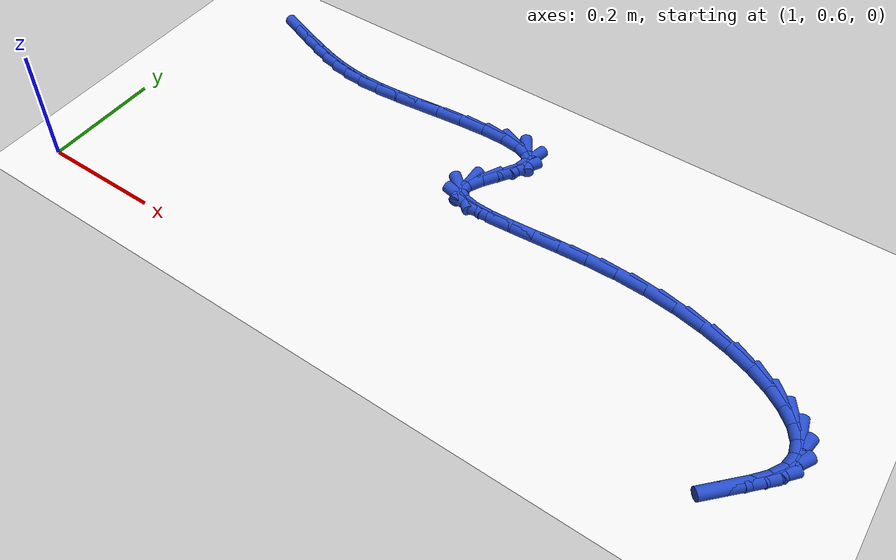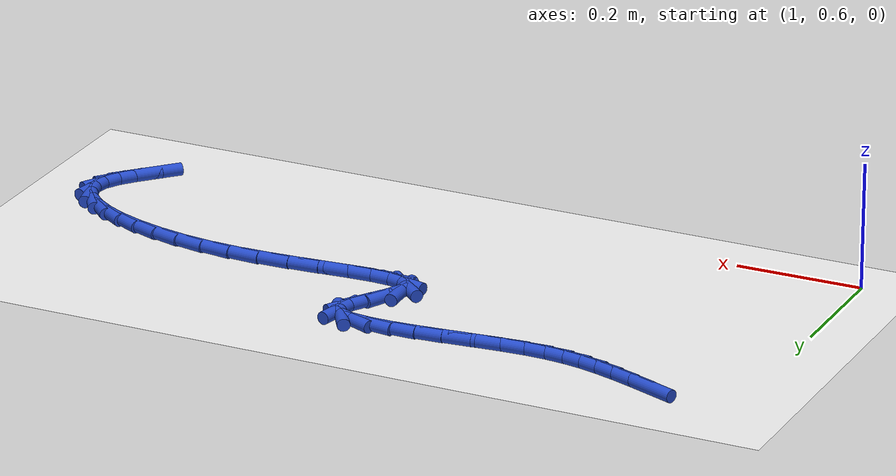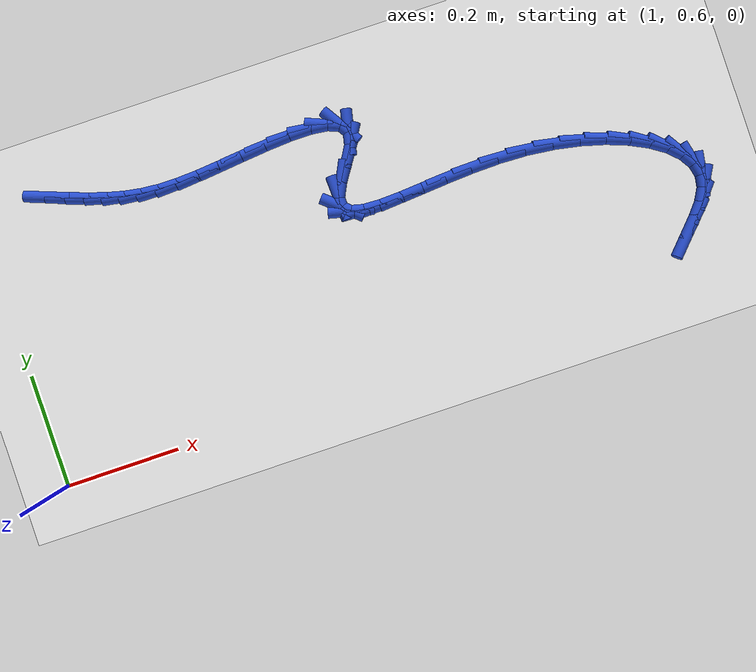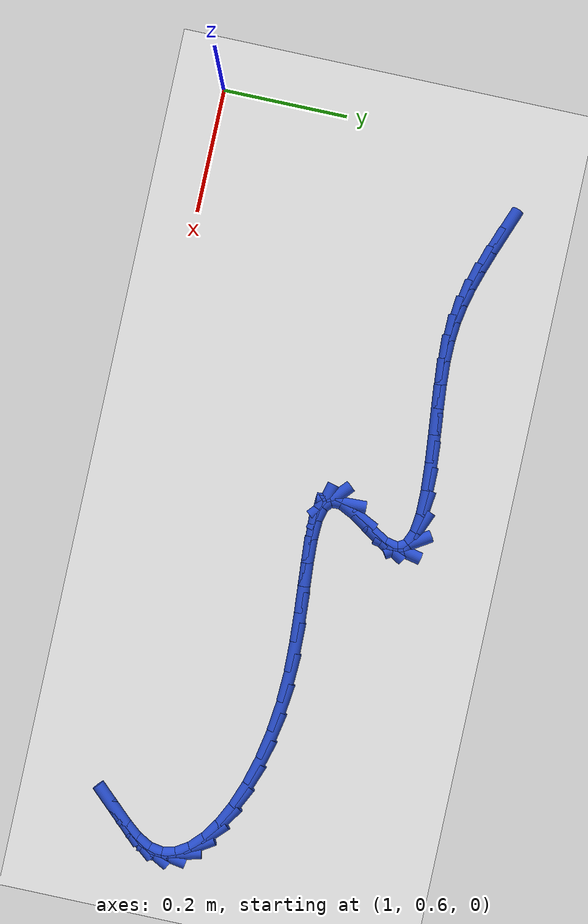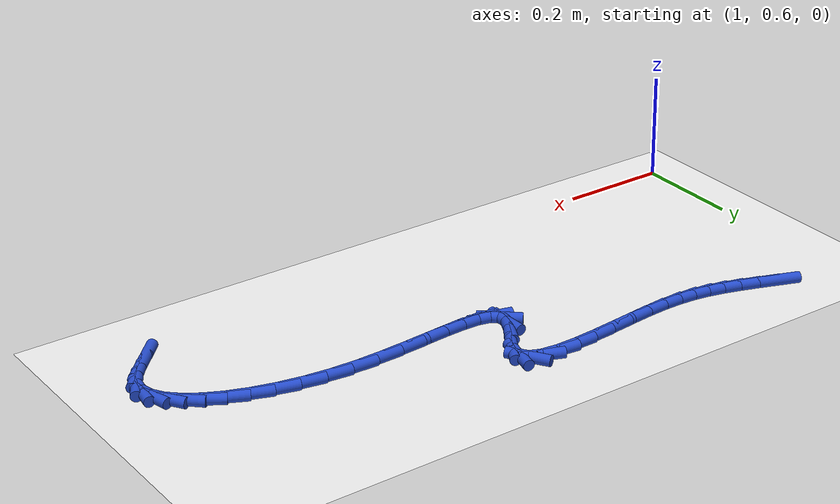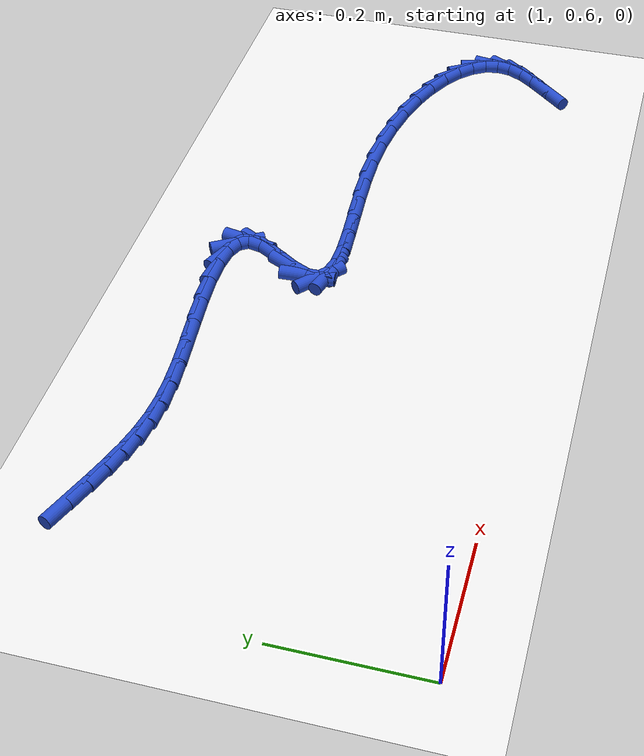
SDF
<sdf version="1.6">
 <world name="default">
  <model name="ground_plane">
   <static>1</static>
   <link name="link">
    <collision name="collision">
     <geometry><plane><normal>0 0 1</normal><size>100 100</size></plane></geometry>
     <surface><friction><ode><mu>100</mu><mu2>50</mu2></ode></friction></surface>
    </collision>
    <visual name="visual">
     <cast_shadows>0</cast_shadows>
     <geometry><plane><normal>0 0 1</normal><size>100 100</size></plane></geometry>
     <material>
      <script><uri>file://media/materials/scripts/gazebo.material</uri><name>Gazebo/WhiteGlow</name></script>
     </material>
    </visual>
   </link>
  </model>
  <model name="line">
   <link name="link_62">
    <pose>1.1285183453697514 1.0837633601290586 0.01 0 1.57 -0.3590996452968195</pose>
    <collision name="collision">
     <geometry><cylinder><radius>0.01</radius><length>0.08</length></cylinder></geometry>
    </collision>
    <visual name="visual">
     <material>
      <script><name>Gazebo/Blue</name><uri>file://media/materials/scripts/gazebo.material</uri></script>
     </material>
     <geometry><cylinder><radius>0.01</radius><length>0.08</length></cylinder></geometry>
    </visual>
   </link>
   <link name="link_63">
    <pose>1.1634286936877696 1.0706588782338466 0.01 0 1.57 -0.33927787305790047</pose>
    <collision name="collision">
     <geometry><cylinder><radius>0.01</radius><length>0.08</length></cylinder></geometry>
    </collision>
    <visual name="visual">
     <material>
      <script><name>Gazebo/Blue</name><uri>file://media/materials/scripts/gazebo.material</uri></script>
     </material>
     <geometry><cylinder><radius>0.01</radius><length>0.08</length></cylinder></geometry>
    </visual>
   </link>
   <link name="link_64">
    <pose>1.196384595103723 1.0590279299464787 0.01 0 1.57 -0.3026590276931551</pose>
    <collision name="collision">
     <geometry><cylinder><radius>0.01</radius><length>0.08</length></cylinder></geometry>
    </collision>
    <visual name="visual">
     <material>
      <script><name>Gazebo/Blue</name><uri>file://media/materials/scripts/gazebo.material</uri></script>
     </material>
     <geometry><cylinder><radius>0.01</radius><length>0.08</length></cylinder></geometry>
    </visual>
   </link>
   <link name="link_65">
    <pose>1.2269009119795171 1.049499145244742 0.01 0 1.57 -0.2449448679200243</pose>
    <collision name="collision">
     <geometry><cylinder><radius>0.01</radius><length>0.08</length></cylinder></geometry>
    </collision>
    <visual name="visual">
     <material>
      <script><name>Gazebo/Blue</name><uri>file://media/materials/scripts/gazebo.material</uri></script>
     </material>
     <geometry><cylinder><radius>0.01</radius><length>0.08</length></cylinder></geometry>
    </visual>
   </link>
   <link name="link_66">
    <pose>1.2558852093692778 1.04225411163948 0.01 0 1.57 -0.1698315902846641</pose>
    <collision name="collision">
     <geometry><cylinder><radius>0.01</radius><length>0.08</length></cylinder></geometry>
    </collision>
    <visual name="visual">
     <material>
      <script><name>Gazebo/Blue</name><uri>file://media/materials/scripts/gazebo.material</uri></script>
     </material>
     <geometry><cylinder><radius>0.01</radius><length>0.08</length></cylinder></geometry>
    </visual>
   </link>
   <link name="link_67">
    <pose>1.2848038862430151 1.037295037012441 0.01 0 1.57 -0.08787684727158496</pose>
    <collision name="collision">
     <geometry><cylinder><radius>0.01</radius><length>0.08</length></cylinder></geometry>
    </collision>
    <visual name="visual">
     <material>
      <script><name>Gazebo/Blue</name><uri>file://media/materials/scripts/gazebo.material</uri></script>
     </material>
     <geometry><cylinder><radius>0.01</radius><length>0.08</length></cylinder></geometry>
    </visual>
   </link>
   <link name="link_68">
    <pose>1.3151248446331933 1.0346236467786207 0.01 0 1.57 -0.011507997036100481</pose>
    <collision name="collision">
     <geometry><cylinder><radius>0.01</radius><length>0.08</length></cylinder></geometry>
    </collision>
    <visual name="visual">
     <material>
      <script><name>Gazebo/Blue</name><uri>file://media/materials/scripts/gazebo.material</uri></script>
     </material>
     <geometry><cylinder><radius>0.01</radius><length>0.08</length></cylinder></geometry>
    </visual>
   </link>
   <link name="link_69">
    <pose>1.3483159865722767 1.034241666353014 0.01 0 1.57 0.05070032279711277</pose>
    <collision name="collision">
     <geometry><cylinder><radius>0.01</radius><length>0.08</length></cylinder></geometry>
    </collision>
    <visual name="visual">
     <material>
      <script><name>Gazebo/Blue</name><uri>file://media/materials/scripts/gazebo.material</uri></script>
     </material>
     <geometry><cylinder><radius>0.01</radius><length>0.08</length></cylinder></geometry>
    </visual>
   </link>
   <link name="link_70">
    <pose>1.3858262131399 1.0361450781488382 0.01 0 1.57 0.0898441458993424</pose>
    <collision name="collision">
     <geometry><cylinder><radius>0.01</radius><length>0.08</length></cylinder></geometry>
    </collision>
    <visual name="visual">
     <material>
      <script><name>Gazebo/Blue</name><uri>file://media/materials/scripts/gazebo.material</uri></script>
     </material>
     <geometry><cylinder><radius>0.01</radius><length>0.08</length></cylinder></geometry>
    </visual>
   </link>
   <link name="link_71">
    <pose>1.4277564119553832 1.0399224300801941 0.01 0 1.57 0.1029358978041506</pose>
    <collision name="collision">
     <geometry><cylinder><radius>0.01</radius><length>0.08</length></cylinder></geometry>
    </collision>
    <visual name="visual">
     <material>
      <script><name>Gazebo/Blue</name><uri>file://media/materials/scripts/gazebo.material</uri></script>
     </material>
     <geometry><cylinder><radius>0.01</radius><length>0.08</length></cylinder></geometry>
    </visual>
   </link>
   <link name="link_72">
    <pose>1.4719887962972413 1.0444916799703845 0.01 0 1.57 0.09508901460955961</pose>
    <collision name="collision">
     <geometry><cylinder><radius>0.01</radius><length>0.08</length></cylinder></geometry>
    </collision>
    <visual name="visual">
     <material>
      <script><name>Gazebo/Blue</name><uri>file://media/materials/scripts/gazebo.material</uri></script>
     </material>
     <geometry><cylinder><radius>0.01</radius><length>0.08</length></cylinder></geometry>
    </visual>
   </link>
   <link name="link_73">
    <pose>1.516198776328577 1.0487082797952374 0.01 0 1.57 0.06486843381105337</pose>
    <collision name="collision">
     <geometry><cylinder><radius>0.01</radius><length>0.08</length></cylinder></geometry>
    </collision>
    <visual name="visual">
     <material>
      <script><name>Gazebo/Blue</name><uri>file://media/materials/scripts/gazebo.material</uri></script>
     </material>
     <geometry><cylinder><radius>0.01</radius><length>0.08</length></cylinder></geometry>
    </visual>
   </link>
   <link name="link_74">
    <pose>1.5580617622124913 1.0514276815305805 0.01 0 1.57 0.002087996279838644</pose>
    <collision name="collision">
     <geometry><cylinder><radius>0.01</radius><length>0.08</length></cylinder></geometry>
    </collision>
    <visual name="visual">
     <material>
      <script><name>Gazebo/Blue</name><uri>file://media/materials/scripts/gazebo.material</uri></script>
     </material>
     <geometry><cylinder><radius>0.01</radius><length>0.08</length></cylinder></geometry>
    </visual>
   </link>
   <link name="link_75">
    <pose>1.5952531641120853 1.0515053371522414 0.01 0 1.57 -0.1222099374732203</pose>
    <collision name="collision">
     <geometry><cylinder><radius>0.01</radius><length>0.08</length></cylinder></geometry>
    </collision>
    <visual name="visual">
     <material>
      <script><name>Gazebo/Blue</name><uri>file://media/materials/scripts/gazebo.material</uri></script>
     </material>
     <geometry><cylinder><radius>0.01</radius><length>0.08</length></cylinder></geometry>
    </visual>
   </link>
   <link name="link_76">
    <pose>1.6254483921904608 1.047796698636049 0.01 0 1.57 -0.39241259022017205</pose>
    <collision name="collision">
     <geometry><cylinder><radius>0.01</radius><length>0.08</length></cylinder></geometry>
    </collision>
    <visual name="visual">
     <material>
      <script><name>Gazebo/Blue</name><uri>file://media/materials/scripts/gazebo.material</uri></script>
     </material>
     <geometry><cylinder><radius>0.01</radius><length>0.08</length></cylinder></geometry>
    </visual>
   </link>
   <link name="link_77">
    <pose>1.6463228566107189 1.0391572179578308 0.01 0 1.57 -1.0106192882021907</pose>
    <collision name="collision">
     <geometry><cylinder><radius>0.01</radius><length>0.08</length></cylinder></geometry>
    </collision>
    <visual name="visual">
     <material>
      <script><name>Gazebo/Blue</name><uri>file://media/materials/scripts/gazebo.material</uri></script>
     </material>
     <geometry><cylinder><radius>0.01</radius><length>0.08</length></cylinder></geometry>
    </visual>
   </link>
   <link name="link_78">
    <pose>1.6555519675359616 1.0244423470934145 0.01 0 1.57 1.3610289629077619</pose>
    <collision name="collision">
     <geometry><cylinder><radius>0.01</radius><length>0.08</length></cylinder></geometry>
    </collision>
    <visual name="visual">
     <material>
      <script><name>Gazebo/Blue</name><uri>file://media/materials/scripts/gazebo.material</uri></script>
     </material>
     <geometry><cylinder><radius>0.01</radius><length>0.08</length></cylinder></geometry>
    </visual>
   </link>
   <link name="link_79">
    <pose>1.6508912732053893 1.0025507984261726 0.01 0 1.57 1.0398791341101201</pose>
    <collision name="collision">
     <geometry><cylinder><radius>0.01</radius><length>0.08</length></cylinder></geometry>
    </collision>
    <visual name="visual">
     <material>
      <script><name>Gazebo/Blue</name><uri>file://media/materials/scripts/gazebo.material</uri></script>
     </material>
     <geometry><cylinder><radius>0.01</radius><length>0.08</length></cylinder></geometry>
    </visual>
   </link>
   <link name="link_80">
    <pose>1.6346069159807266 0.9748162085291442 0.01 0 1.57 0.9882235811372846</pose>
    <collision name="collision">
     <geometry><cylinder><radius>0.01</radius><length>0.08</length></cylinder></geometry>
    </collision>
    <visual name="visual">
     <material>
      <script><name>Gazebo/Blue</name><uri>file://media/materials/scripts/gazebo.material</uri></script>
     </material>
     <geometry><cylinder><radius>0.01</radius><length>0.08</length></cylinder></geometry>
    </visual>
   </link>
   <link name="link_81">
    <pose>1.6157904563852448 0.9462567343145302 0.01 0 1.57 1.1166185757258085</pose>
    <collision name="collision">
     <geometry><cylinder><radius>0.01</radius><length>0.08</length></cylinder></geometry>
    </collision>
    <visual name="visual">
     <material>
      <script><name>Gazebo/Blue</name><uri>file://media/materials/scripts/gazebo.material</uri></script>
     </material>
     <geometry><cylinder><radius>0.01</radius><length>0.08</length></cylinder></geometry>
    </visual>
   </link>
   <link name="link_82">
    <pose>1.6040213268180943 0.9221504398472864 0.01 0 1.57 -1.53564687889813</pose>
    <collision name="collision">
     <geometry><cylinder><radius>0.01</radius><length>0.08</length></cylinder></geometry>
    </collision>
    <visual name="visual">
     <material>
      <script><name>Gazebo/Blue</name><uri>file://media/materials/scripts/gazebo.material</uri></script>
     </material>
     <geometry><cylinder><radius>0.01</radius><length>0.08</length></cylinder></geometry>
    </visual>
   </link>
   <link name="link_83">
    <pose>1.604614223447217 0.9052895082224606 0.01 0 1.57 -0.7206442717413866</pose>
    <collision name="collision">
     <geometry><cylinder><radius>0.01</radius><length>0.08</length></cylinder></geometry>
    </collision>
    <visual name="visual">
     <material>
      <script><name>Gazebo/Blue</name><uri>file://media/materials/scripts/gazebo.material</uri></script>
     </material>
     <geometry><cylinder><radius>0.01</radius><length>0.08</length></cylinder></geometry>
    </visual>
   </link>
   <link name="link_84">
    <pose>1.616572745045639 0.8947874338512746 0.01 0 1.57 -0.2394508467682611</pose>
    <collision name="collision">
     <geometry><cylinder><radius>0.01</radius><length>0.08</length></cylinder></geometry>
    </collision>
    <visual name="visual">
     <material>
      <script><name>Gazebo/Blue</name><uri>file://media/materials/scripts/gazebo.material</uri></script>
     </material>
     <geometry><cylinder><radius>0.01</radius><length>0.08</length></cylinder></geometry>
    </visual>
   </link>
   <link name="link_85">
    <pose>1.6383911288918083 0.889460808364208 0.01 0 1.57 -0.04420304498912993</pose>
    <collision name="collision">
     <geometry><cylinder><radius>0.01</radius><length>0.08</length></cylinder></geometry>
    </collision>
    <visual name="visual">
     <material>
      <script><name>Gazebo/Blue</name><uri>file://media/materials/scripts/gazebo.material</uri></script>
     </material>
     <geometry><cylinder><radius>0.01</radius><length>0.08</length></cylinder></geometry>
    </visual>
   </link>
   <link name="link_86">
    <pose>1.6685636122641734 0.8881262233917403 0.01 0 1.57 0.03979568619891079</pose>
    <collision name="collision">
     <geometry><cylinder><radius>0.01</radius><length>0.08</length></cylinder></geometry>
    </collision>
    <visual name="visual">
     <material>
      <script><name>Gazebo/Blue</name><uri>file://media/materials/scripts/gazebo.material</uri></script>
     </material>
     <geometry><cylinder><radius>0.01</radius><length>0.08</length></cylinder></geometry>
    </visual>
   </link>
   <link name="link_87">
    <pose>1.7055844324411822 0.8896002705643514 0.01 0 1.57 0.07302906951793103</pose>
    <collision name="collision">
     <geometry><cylinder><radius>0.01</radius><length>0.08</length></cylinder></geometry>
    </collision>
    <visual name="visual">
     <material>
      <script><name>Gazebo/Blue</name><uri>file://media/materials/scripts/gazebo.material</uri></script>
     </material>
     <geometry><cylinder><radius>0.01</radius><length>0.08</length></cylinder></geometry>
    </visual>
   </link>
   <link name="link_88">
    <pose>1.7479478267012827 0.892699541512521 0.01 0 1.57 0.07649698482547174</pose>
    <collision name="collision">
     <geometry><cylinder><radius>0.01</radius><length>0.08</length></cylinder></geometry>
    </collision>
    <visual name="visual">
     <material>
      <script><name>Gazebo/Blue</name><uri>file://media/materials/scripts/gazebo.material</uri></script>
     </material>
     <geometry><cylinder><radius>0.01</radius><length>0.08</length></cylinder></geometry>
    </visual>
   </link>
   <link name="link_89">
    <pose>1.7941480323229242 0.8962406278667288 0.01 0 1.57 0.05762048660900701</pose>
    <collision name="collision">
     <geometry><cylinder><radius>0.01</radius><length>0.08</length></cylinder></geometry>
    </collision>
    <visual name="visual">
     <material>
      <script><name>Gazebo/Blue</name><uri>file://media/materials/scripts/gazebo.material</uri></script>
     </material>
     <geometry><cylinder><radius>0.01</radius><length>0.08</length></cylinder></geometry>
    </visual>
   </link>
   <link name="link_90">
    <pose>1.8426792865845527 0.899040121257454 0.01 0 1.57 0.017716002057954643</pose>
    <collision name="collision">
     <geometry><cylinder><radius>0.01</radius><length>0.08</length></cylinder></geometry>
    </collision>
    <visual name="visual">
     <material>
      <script><name>Gazebo/Blue</name><uri>file://media/materials/scripts/gazebo.material</uri></script>
     </material>
     <geometry><cylinder><radius>0.01</radius><length>0.08</length></cylinder></geometry>
    </visual>
   </link>
   <link name="link_91">
    <pose>1.8920358267646198 0.8999146133151775 0.01 0 1.57 -0.04466083925068089</pose>
    <collision name="collision">
     <geometry><cylinder><radius>0.01</radius><length>0.08</length></cylinder></geometry>
    </collision>
    <visual name="visual">
     <material>
      <script><name>Gazebo/Blue</name><uri>file://media/materials/scripts/gazebo.material</uri></script>
     </material>
     <geometry><cylinder><radius>0.01</radius><length>0.08</length></cylinder></geometry>
    </visual>
   </link>
   <link name="link_92">
    <pose>1.9407400610401226 0.8977379939901151 0.01 0 1.57 -0.11745724686859974</pose>
    <collision name="collision">
     <geometry><cylinder><radius>0.01</radius><length>0.08</length></cylinder></geometry>
    </collision>
    <visual name="visual">
     <material>
      <script><name>Gazebo/Blue</name><uri>file://media/materials/scripts/gazebo.material</uri></script>
     </material>
     <geometry><cylinder><radius>0.01</radius><length>0.08</length></cylinder></geometry>
    </visual>
   </link>
   <link name="link_93">
    <pose>1.987713128314399 0.8921951533006709 0.01 0 1.57 -0.19157112768836074</pose>
    <collision name="collision">
     <geometry><cylinder><radius>0.01</radius><length>0.08</length></cylinder></geometry>
    </collision>
    <visual name="visual">
     <material>
      <script><name>Gazebo/Blue</name><uri>file://media/materials/scripts/gazebo.material</uri></script>
     </material>
     <geometry><cylinder><radius>0.01</radius><length>0.08</length></cylinder></geometry>
    </visual>
   </link>
   <link name="link_94">
    <pose>2.032171857795337 0.8835724018263307 0.01 0 1.57 -0.2701920351205339</pose>
    <collision name="collision">
     <geometry><cylinder><radius>0.01</radius><length>0.08</length></cylinder></geometry>
    </collision>
    <visual name="visual">
     <material>
      <script><name>Gazebo/Blue</name><uri>file://media/materials/scripts/gazebo.material</uri></script>
     </material>
     <geometry><cylinder><radius>0.01</radius><length>0.08</length></cylinder></geometry>
    </visual>
   </link>
   <link name="link_95">
    <pose>2.0733400623292417 0.8721702545478441 0.01 0 1.57 -0.358013546228948</pose>
    <collision name="collision">
     <geometry><cylinder><radius>0.01</radius><length>0.08</length></cylinder></geometry>
    </collision>
    <visual name="visual">
     <material>
      <script><name>Gazebo/Blue</name><uri>file://media/materials/scripts/gazebo.material</uri></script>
     </material>
     <geometry><cylinder><radius>0.01</radius><length>0.08</length></cylinder></geometry>
    </visual>
   </link>
   <link name="link_96">
    <pose>2.1104415547624202 0.858289226445961 0.01 0 1.57 -0.4619125496463524</pose>
    <collision name="collision">
     <geometry><cylinder><radius>0.01</radius><length>0.08</length></cylinder></geometry>
    </collision>
    <visual name="visual">
     <material>
      <script><name>Gazebo/Blue</name><uri>file://media/materials/scripts/gazebo.material</uri></script>
     </material>
     <geometry><cylinder><radius>0.01</radius><length>0.08</length></cylinder></geometry>
    </visual>
   </link>
   <link name="link_97">
    <pose>2.142700147941177 0.8422298325014297 0.01 0 1.57 -0.5926032018039415</pose>
    <collision name="collision">
     <geometry><cylinder><radius>0.01</radius><length>0.08</length></cylinder></geometry>
    </collision>
    <visual name="visual">
     <material>
      <script><name>Gazebo/Blue</name><uri>file://media/materials/scripts/gazebo.material</uri></script>
     </material>
     <geometry><cylinder><radius>0.01</radius><length>0.08</length></cylinder></geometry>
    </visual>
   </link>
   <link name="link_98">
    <pose>2.1693396547118207 0.8242925876950004 0.01 0 1.57 -0.7670482542346578</pose>
    <collision name="collision">
     <geometry><cylinder><radius>0.01</radius><length>0.08</length></cylinder></geometry>
    </collision>
    <visual name="visual">
     <material>
      <script><name>Gazebo/Blue</name><uri>file://media/materials/scripts/gazebo.material</uri></script>
     </material>
     <geometry><cylinder><radius>0.01</radius><length>0.08</length></cylinder></geometry>
    </visual>
   </link>
   <link name="link_99">
    <pose>2.1895838879206537 0.8047780070074214 0.01 0 1.57 -1.009498764675532</pose>
    <collision name="collision">
     <geometry><cylinder><radius>0.01</radius><length>0.08</length></cylinder></geometry>
    </collision>
    <visual name="visual">
     <material>
      <script><name>Gazebo/Blue</name><uri>file://media/materials/scripts/gazebo.material</uri></script>
     </material>
     <geometry><cylinder><radius>0.01</radius><length>0.08</length></cylinder></geometry>
    </visual>
   </link>
   <link name="link_100">
    <pose>2.2026566604139832 0.7839866054194431 0.01 0 1.57 -1.3395615337267512</pose>
    <collision name="collision">
     <geometry><cylinder><radius>0.01</radius><length>0.08</length></cylinder></geometry>
    </collision>
    <visual name="visual">
     <material>
      <script><name>Gazebo/Blue</name><uri>file://media/materials/scripts/gazebo.material</uri></script>
     </material>
     <geometry><cylinder><radius>0.01</radius><length>0.08</length></cylinder></geometry>
    </visual>
   </link>
   <link name="link_101">
    <pose>2.2077817850381165 0.7622188979118143 0.01 0 1.57 1.4118043623769996</pose>
    <collision name="collision">
     <geometry><cylinder><radius>0.01</radius><length>0.08</length></cylinder></geometry>
    </collision>
    <visual name="visual">
     <material>
      <script><name>Gazebo/Blue</name><uri>file://media/materials/scripts/gazebo.material</uri></script>
     </material>
     <geometry><cylinder><radius>0.01</radius><length>0.08</length></cylinder></geometry>
    </visual>
   </link>
   <link name="link_102">
    <pose>2.204183074639358 0.7397753994652843 0.01 0 1.57 1.0706591382067576</pose>
    <collision name="collision">
     <geometry><cylinder><radius>0.01</radius><length>0.08</length></cylinder></geometry>
    </collision>
    <visual name="visual">
     <material>
      <script><name>Gazebo/Blue</name><uri>file://media/materials/scripts/gazebo.material</uri></script>
     </material>
     <geometry><cylinder><radius>0.01</radius><length>0.08</length></cylinder></geometry>
    </visual>
   </link>
   <link name="link_103">
    <pose>2.1916719205150774 0.7168813510437804 0.01 0 1.57 0.887145514287093</pose>
    <collision name="collision">
     <geometry><cylinder><radius>0.01</radius><length>0.08</length></cylinder></geometry>
    </collision>
    <visual name="visual">
     <material>
      <script><name>Gazebo/Blue</name><uri>file://media/materials/scripts/gazebo.material</uri></script>
     </material>
     <geometry><cylinder><radius>0.01</radius><length>0.08</length></cylinder></geometry>
    </visual>
   </link>
   <link name="link_104">
    <pose>2.1725737767305877 0.6934399198477292 0.01 0 1.57 0.8170645218951759</pose>
    <collision name="collision">
     <geometry><cylinder><radius>0.01</radius><length>0.08</length></cylinder></geometry>
    </collision>
    <visual name="visual">
     <material>
      <script><name>Gazebo/Blue</name><uri>file://media/materials/scripts/gazebo.material</uri></script>
     </material>
     <geometry><cylinder><radius>0.01</radius><length>0.08</length></cylinder></geometry>
    </visual>
   </link>
   <link name="link_105">
    <pose>2.1498863627012827 0.6692681499170171 0.01 0 1.57 0.8227248534155027</pose>
    <collision name="collision">
     <geometry><cylinder><radius>0.01</radius><length>0.08</length></cylinder></geometry>
    </collision>
    <visual name="visual">
     <material>
      <script><name>Gazebo/Blue</name><uri>file://media/materials/scripts/gazebo.material</uri></script>
     </material>
     <geometry><cylinder><radius>0.01</radius><length>0.08</length></cylinder></geometry>
    </visual>
   </link>
  </model>
 </world>
</sdf>
